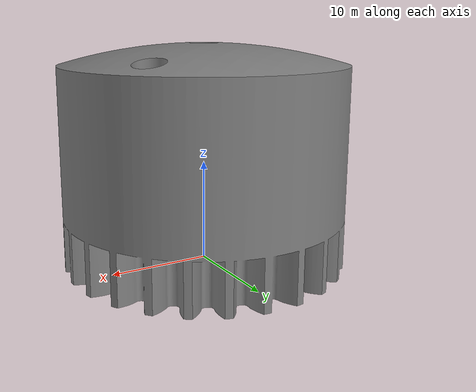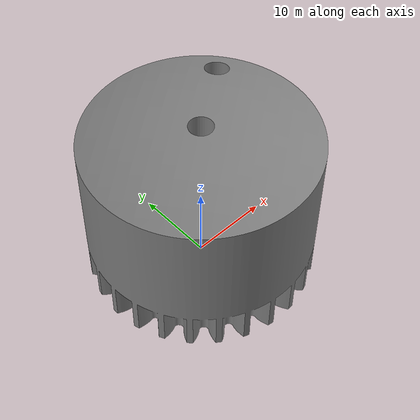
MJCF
<mujoco model="FabConvert.com_gear_2">
  <default>
    <default class="visual">
      <geom group="2" type="mesh" contype="0" conaffinity="0"/>
    </default>
    <default class="collision">
      <geom group="3" type="mesh"/>
    </default>
  </default>
  <asset>
    <mesh file="FabConvert.com_gear_2.obj"/>
  </asset>
  <worldbody>
    <body name="FabConvert.com_gear_2">
      <geom mesh="FabConvert.com_gear_2" class="visual"/>
      <geom mesh="FabConvert.com_gear_2" class="collision"/>
    </body>
  </worldbody>
</mujoco>
